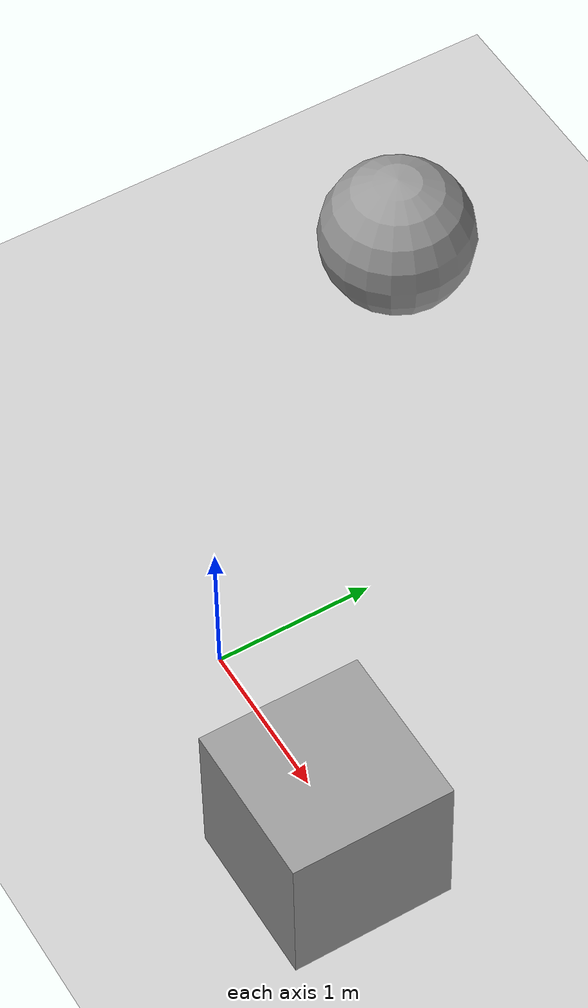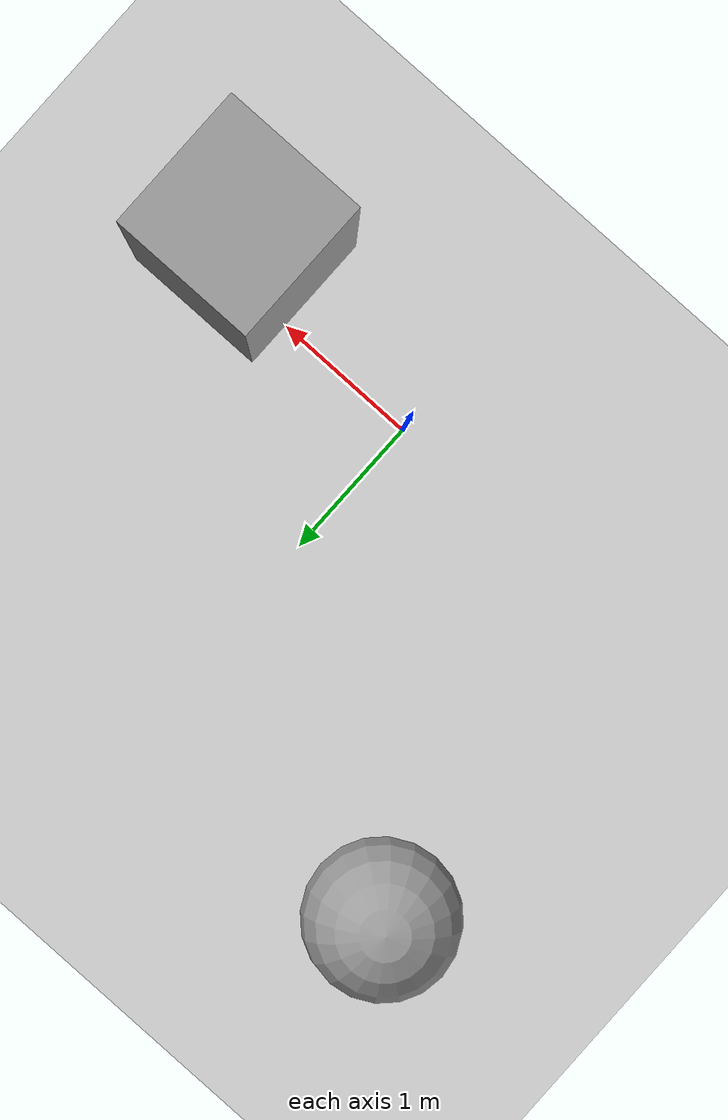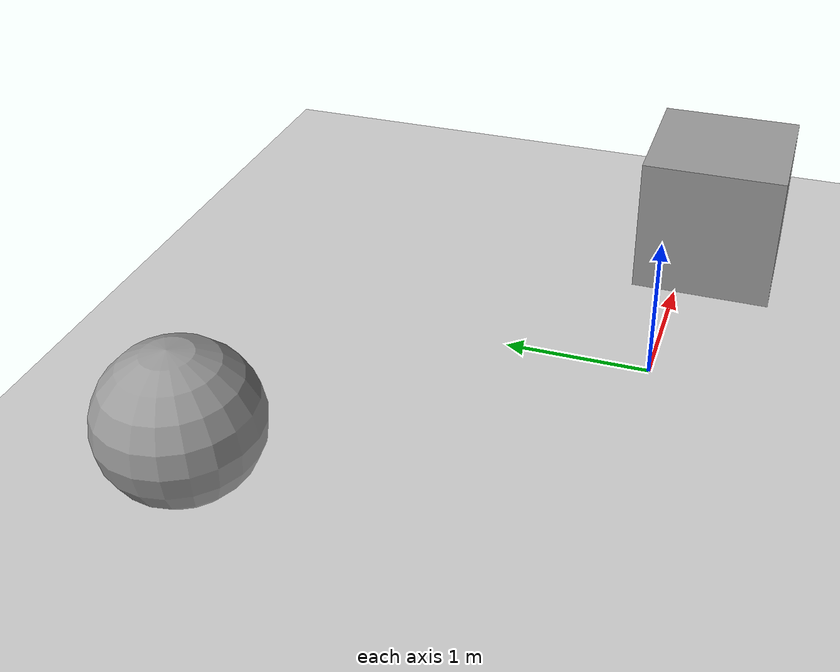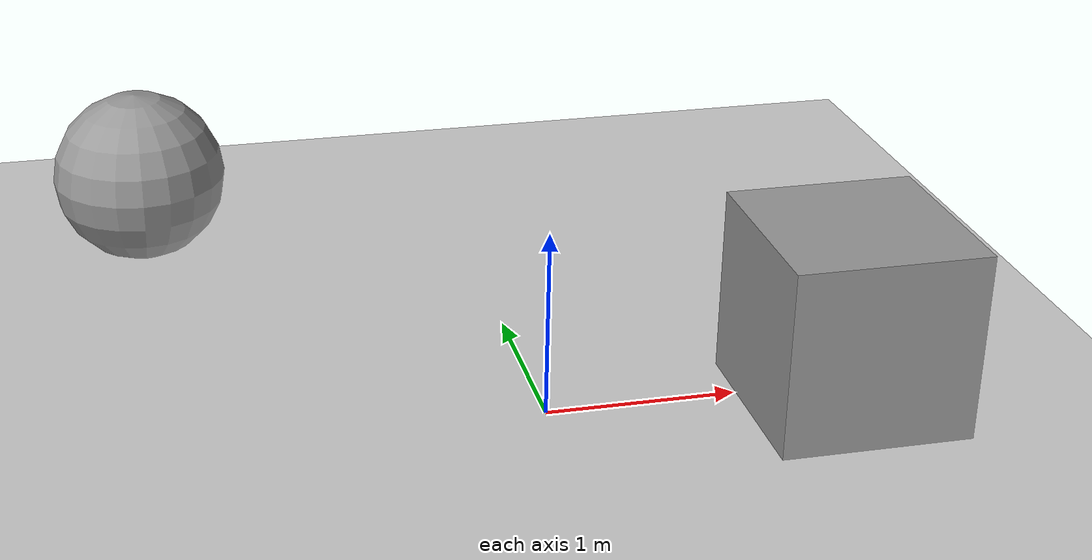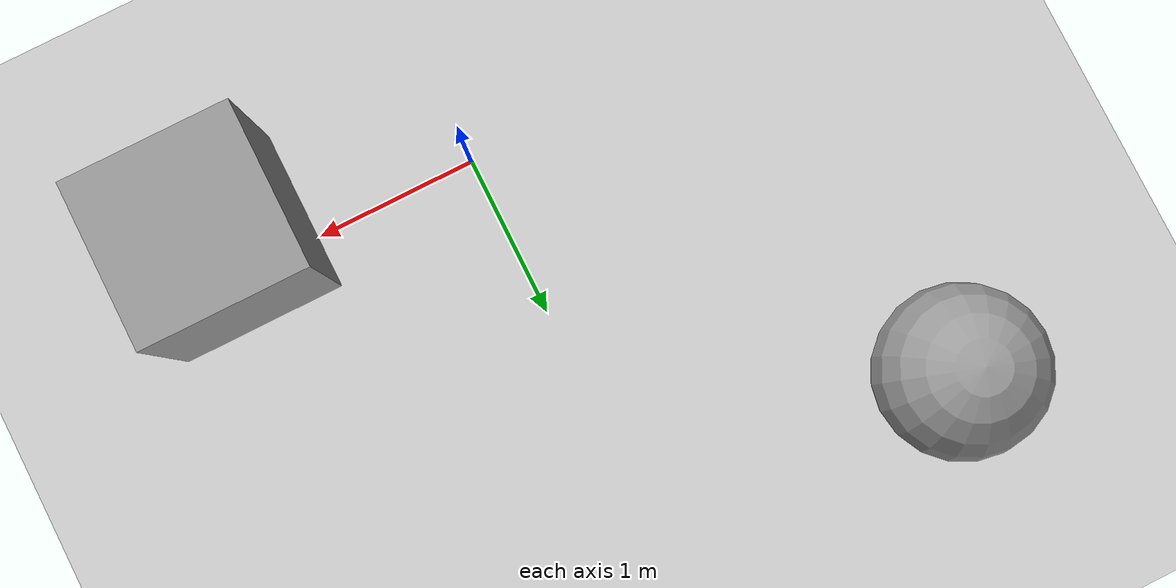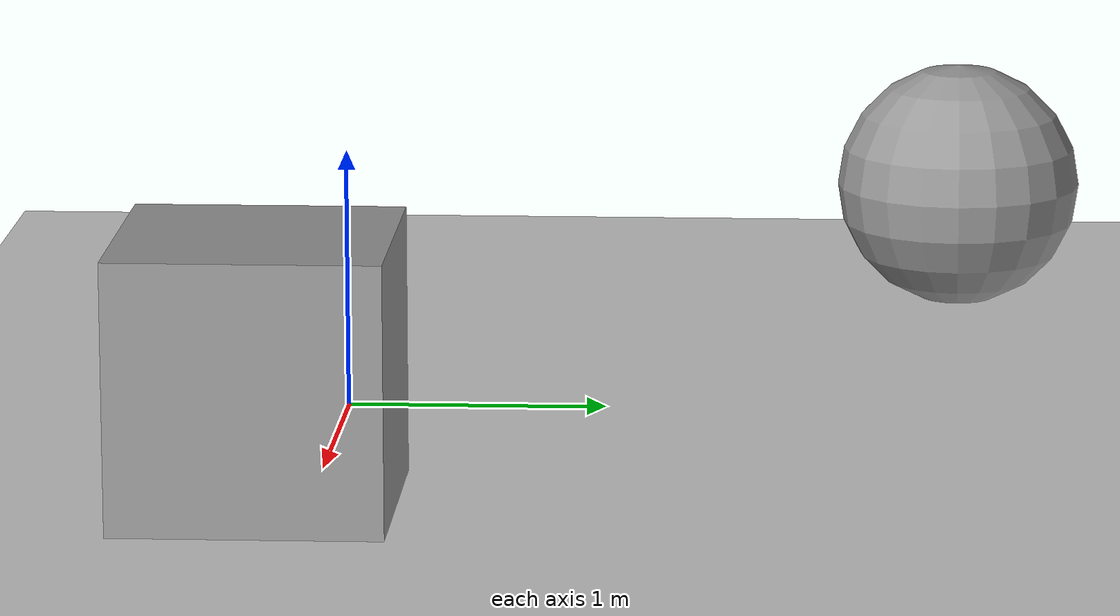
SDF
<sdf version='1.7'>
  <world name='default'>

    <light name='sun' type='directional'>
      <cast_shadows>1</cast_shadows>
      <pose>0 0 10 0 -0 0</pose>
      <diffuse>0.8 0.8 0.8 1</diffuse>
      <specular>0.2 0.2 0.2 1</specular>
      <attenuation>
        <range>1000</range>
        <constant>0.9</constant>
        <linear>0.01</linear>
        <quadratic>0.001</quadratic>
      </attenuation>
      <direction>-0.5 0.1 -0.9</direction>
      <spot>
        <inner_angle>0</inner_angle>
        <outer_angle>0</outer_angle>
        <falloff>0</falloff>
      </spot>
    </light>

    <model name='ground_plane'>
      <static>1</static>
      <link name='link'>
        <collision name='collision'>
          <geometry>
            <plane>
              <normal>0 0 1</normal>
              <size>100 100</size>
            </plane>
          </geometry>
          <surface>
            <friction>
              <ode>
                <mu>100</mu>
                <mu2>50</mu2>
              </ode>
              <torsional>
                <ode/>
              </torsional>
            </friction>
            <contact>
              <ode/>
            </contact>
            <bounce/>
          </surface>
          <max_contacts>10</max_contacts>
        </collision>
        <visual name='visual'>
          <cast_shadows>0</cast_shadows>
          <geometry>
            <plane>
              <normal>0 0 1</normal>
              <size>100 100</size>
            </plane>
          </geometry>
          <material>
            <script>
              <uri>file://media/materials/scripts/gazebo.material</uri>
              <name>Gazebo/Grey</name>
            </script>
          </material>
        </visual>
        <self_collide>0</self_collide>
        <enable_wind>0</enable_wind>
        <kinematic>0</kinematic>
      </link>
    </model>
    <gravity>0 0 -9.8</gravity>
    <physics type='ode'>
      <max_step_size>0.001</max_step_size>
      <real_time_factor>1</real_time_factor>
      <real_time_update_rate>1000</real_time_update_rate>
    </physics>
    <scene>
      <ambient>0.4 0.4 0.4 1</ambient>
      <background>0.7 0.7 0.7 1</background>
      <shadows>1</shadows>
    </scene>
    <wind/>

    <spherical_coordinates>
      <surface_model>EARTH_WGS84</surface_model>
      <latitude_deg>43.656807</latitude_deg>
      <longitude_deg>-79.378748</longitude_deg>
      <elevation>0</elevation>
      <heading_deg>0</heading_deg>
    </spherical_coordinates>

    <model name='unit_box'>
      <pose>1.51271 -0.181418 0.5 0 -0 0</pose>
      <link name='link'>
        <inertial>
          <mass>1</mass>
          <inertia>
            <ixx>0.166667</ixx>
            <ixy>0</ixy>
            <ixz>0</ixz>
            <iyy>0.166667</iyy>
            <iyz>0</iyz>
            <izz>0.166667</izz>
          </inertia>
          <pose>0 0 0 0 -0 0</pose>
        </inertial>
        <collision name='collision'>
          <geometry>
            <box>
              <size>1 1 1</size>
            </box>
          </geometry>
          <max_contacts>10</max_contacts>
          <surface>
            <contact>
              <ode/>
            </contact>
            <bounce/>
            <friction>
              <torsional>
                <ode/>
              </torsional>
              <ode/>
            </friction>
          </surface>
        </collision>
        <visual name='visual'>
          <geometry>
            <box>
              <size>1 1 1</size>
            </box>
          </geometry>
          <material>
            <script>
              <name>Gazebo/Grey</name>
              <uri>file://media/materials/scripts/gazebo.material</uri>
            </script>
          </material>
        </visual>
        <self_collide>0</self_collide>
        <enable_wind>0</enable_wind>
        <kinematic>0</kinematic>
      </link>
    </model>

    <model name='unit_sphere'>
      <pose>-1.89496 2.36764 0.5 0 -0 0</pose>
      <link name='link'>
        <inertial>
          <mass>1</mass>
          <inertia>
            <ixx>0.1</ixx>
            <ixy>0</ixy>
            <ixz>0</ixz>
            <iyy>0.1</iyy>
            <iyz>0</iyz>
            <izz>0.1</izz>
          </inertia>
          <pose>0 0 0 0 -0 0</pose>
        </inertial>
        <collision name='collision'>
          <geometry>
            <sphere>
              <radius>0.5</radius>
            </sphere>
          </geometry>
          <max_contacts>10</max_contacts>
          <surface>
            <contact>
              <ode/>
            </contact>
            <bounce/>
            <friction>
              <torsional>
                <ode/>
              </torsional>
              <ode/>
            </friction>
          </surface>
        </collision>
        <visual name='visual'>
          <geometry>
            <sphere>
              <radius>0.5</radius>
            </sphere>
          </geometry>
          <material>
            <script>
              <name>Gazebo/Grey</name>
              <uri>file://media/materials/scripts/gazebo.material</uri>
            </script>
          </material>
        </visual>
        <self_collide>0</self_collide>
        <enable_wind>0</enable_wind>
        <kinematic>0</kinematic>
      </link>
    </model>

  </world>
</sdf>
